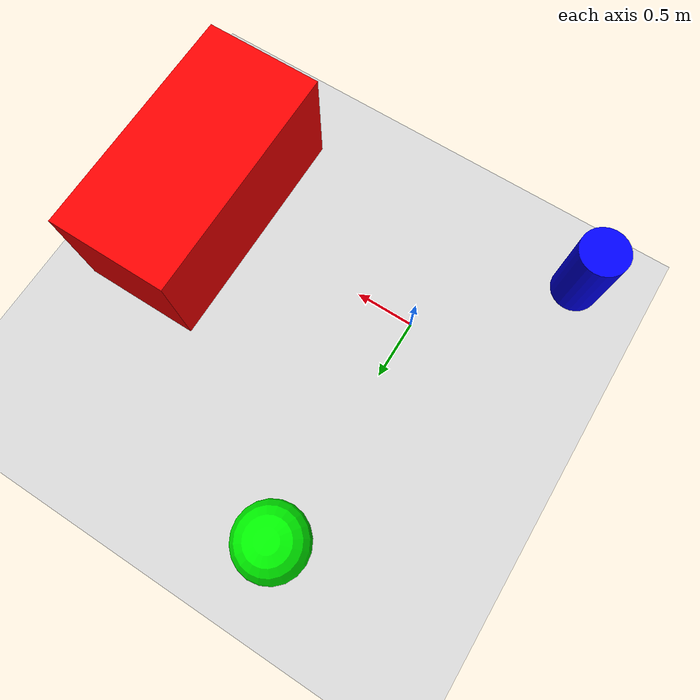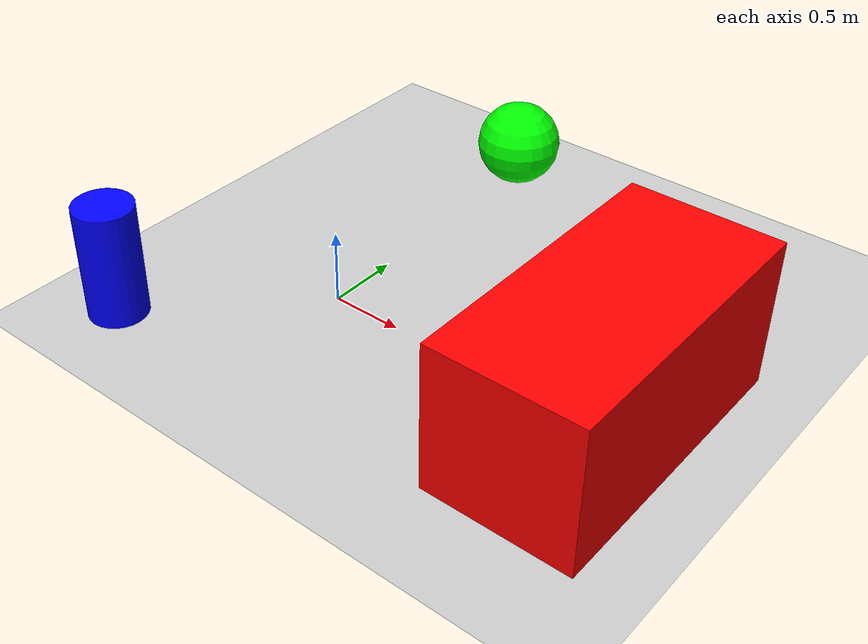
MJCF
<mujoco model="ros_maps_test">
  <compiler angle="radian"/>

  <worldbody>
    <light directional="true" pos="3 3 5" dir="-0.6 -0.6 -1"/>

    <!-- Static box: 1m x 2m x 0.5m centred at (2, 0, 0.5) —
         easy to spot in the point cloud and occupancy grid as a 1x2 blob at x=2,y=0 -->
    <body name="test_box" pos="2 0 0.5">
      <geom name="test_box_geom" type="box" size="0.5 1.0 0.5" rgba="1 0 0 1"/>
    </body>

    <!-- Sphere: r=0.3 at (0, 2, 0.3) — compact cluster in point cloud -->
    <body name="test_sphere" pos="0 2 0.3">
      <geom name="test_sphere_geom" type="sphere" size="0.3" rgba="0 1 0 1"/>
    </body>

    <!-- Cylinder: r=0.2, h=0.8 at (-1, -1, 0.4) — vertical-ish in the grid -->
    <body name="test_cylinder" pos="-1 -1 0.4">
      <geom name="test_cylinder_geom" type="cylinder" size="0.2 0.4" rgba="0 0 1 1"/>
    </body>

    <!-- Ground plane — filtered by the 1m extent cap so not in point cloud/grid -->
    <geom name="floor" type="plane" size="10 10 0.1" rgba="0.8 0.8 0.8 1"/>
  </worldbody>
</mujoco>
